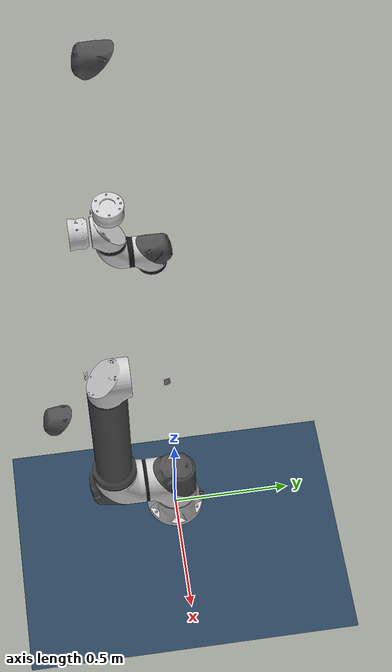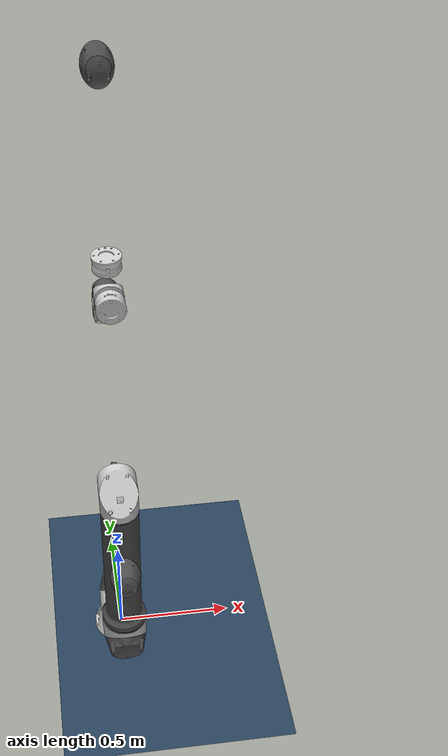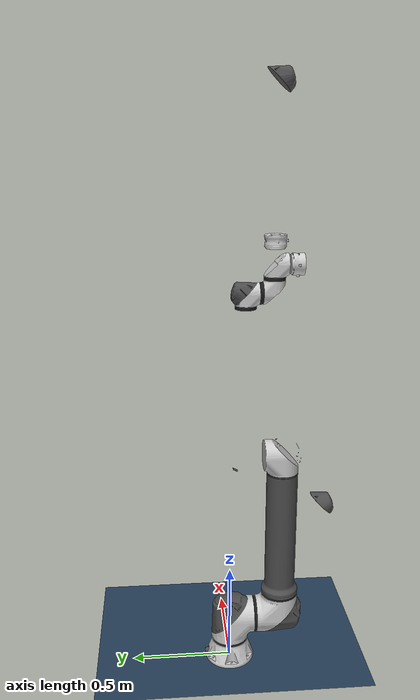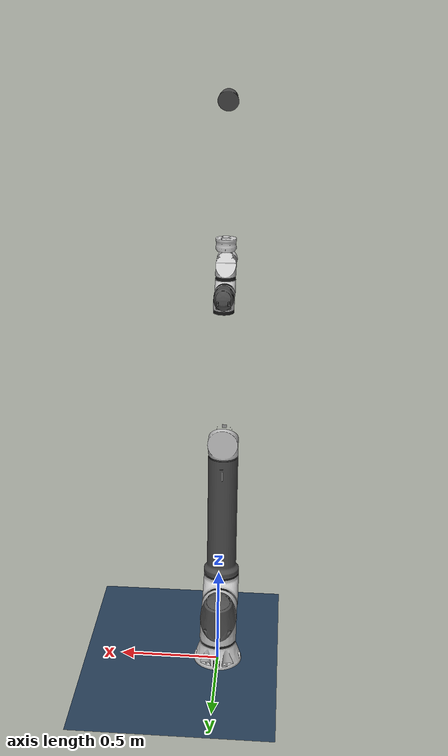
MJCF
<mujoco model="rb20_1800e_u">
  <compiler angle="radian" />
  <asset>
    <mesh name="link0" content_type="model/stl" file="../meshes/rb20_1800e_u/collision/link0.stl" />
    <mesh name="link1" content_type="model/stl" file="../meshes/rb20_1800e_u/collision/link1.stl" />
    <mesh name="link2" content_type="model/stl" file="../meshes/rb20_1800e_u/collision/link2.stl" />
    <mesh name="link3" content_type="model/stl" file="../meshes/rb20_1800e_u/collision/link3.stl" />
    <mesh name="link4" content_type="model/stl" file="../meshes/rb20_1800e_u/collision/link4.stl" />
    <mesh name="link5" content_type="model/stl" file="../meshes/rb20_1800e_u/collision/link5.stl" />
    <mesh name="link6" content_type="model/stl" file="../meshes/rb20_1800e_u/collision/link6.stl" />
    <texture type="skybox" builtin="gradient" rgb1="0.3 0.5 0.7" rgb2="0 0 0" width="512" height="3072" />
    <texture type="2d" name="groundplane" builtin="checker" mark="edge" rgb1="0.2 0.3 0.4" rgb2="0.1 0.2 0.3" markrgb="0.8 0.8 0.8" width="300" height="300" />
    <material name="groundplane" texture="groundplane" texuniform="true" texrepeat="5 5" reflectance="0.2" />
    <mesh name="link0_visual_0" file="../meshes/rb20_1800e_u/visual/link0_visual_0.obj" />
    <material name="link0_visual_0" rgba="0.3 0.3 0.3 1" specular="0" />
    <mesh name="link0_visual_1" file="../meshes/rb20_1800e_u/visual/link0_visual_1.obj" />
    <material name="link0_visual_1" rgba="0.3 0.3 0.3 1" specular="0" />
    <mesh name="link0_visual_2" file="../meshes/rb20_1800e_u/visual/link0_visual_2.obj" />
    <material name="link0_visual_2" rgba="0.8 0.8 0.8 1" specular="0" />
    <mesh name="link0_visual_3" file="../meshes/rb20_1800e_u/visual/link0_visual_3.obj" />
    <material name="link0_visual_3" rgba="0.8 0.8 0.8 1" specular="0" />
    <mesh name="link1_visual_0" file="../meshes/rb20_1800e_u/visual/link1_visual_0.obj" />
    <material name="link1_visual_0" rgba="0.1 0.1 0.1 1" specular="0" />
    <mesh name="link1_visual_1" file="../meshes/rb20_1800e_u/visual/link1_visual_1.obj" />
    <material name="link1_visual_1" rgba="0.3 0.3 0.3 1" specular="0" />
    <mesh name="link1_visual_2" file="../meshes/rb20_1800e_u/visual/link1_visual_2.obj" />
    <material name="link1_visual_2" rgba="0.8 0.8 0.8 1" specular="0" />
    <mesh name="link2_visual_0" file="../meshes/rb20_1800e_u/visual/link2_visual_0.obj" />
    <material name="link2_visual_0" rgba="0.1 0.1 0.1 1" specular="0" />
    <mesh name="link2_visual_1" file="../meshes/rb20_1800e_u/visual/link2_visual_1.obj" />
    <material name="link2_visual_1" rgba="0.8 0.8 0.8 1" specular="0" />
    <mesh name="link2_visual_2" file="../meshes/rb20_1800e_u/visual/link2_visual_2.obj" />
    <material name="link2_visual_2" rgba="0.3 0.3 0.3 1" specular="0" />
    <mesh name="link2_visual_3" file="../meshes/rb20_1800e_u/visual/link2_visual_3.obj" />
    <material name="link2_visual_3" rgba="0.3 0.3 0.3 1" specular="0" />
    <mesh name="link2_visual_4" file="../meshes/rb20_1800e_u/visual/link2_visual_4.obj" />
    <material name="link2_visual_4" rgba="0.3 0.3 0.3 1" specular="0" />
    <mesh name="link2_visual_5" file="../meshes/rb20_1800e_u/visual/link2_visual_5.obj" />
    <material name="link2_visual_5" rgba="0.3 0.3 0.3 1" specular="0" />
    <mesh name="link2_visual_6" file="../meshes/rb20_1800e_u/visual/link2_visual_6.obj" />
    <material name="link2_visual_6" rgba="0.1 0.1 0.1 1" specular="0" />
    <mesh name="link2_visual_7" file="../meshes/rb20_1800e_u/visual/link2_visual_7.obj" />
    <material name="link2_visual_7" rgba="0.3 0.3 0.3 1" specular="0" />
    <mesh name="link2_visual_8" file="../meshes/rb20_1800e_u/visual/link2_visual_8.obj" />
    <material name="link2_visual_8" rgba="0.8 0.8 0.8 1" specular="0" />
    <mesh name="link2_visual_9" file="../meshes/rb20_1800e_u/visual/link2_visual_9.obj" />
    <material name="link2_visual_9" rgba="0.8 0.8 0.8 1" specular="0" />
    <mesh name="link2_visual_10" file="../meshes/rb20_1800e_u/visual/link2_visual_10.obj" />
    <material name="link2_visual_10" rgba="0.3 0.3 0.3 1" specular="0" />
    <mesh name="link3_visual_0" file="../meshes/rb20_1800e_u/visual/link3_visual_0.obj" />
    <material name="link3_visual_0" rgba="0.1 0.1 0.1 1" specular="0" />
    <mesh name="link3_visual_1" file="../meshes/rb20_1800e_u/visual/link3_visual_1.obj" />
    <material name="link3_visual_1" rgba="0.3 0.3 0.3 1" specular="0" />
    <mesh name="link3_visual_2" file="../meshes/rb20_1800e_u/visual/link3_visual_2.obj" />
    <material name="link3_visual_2" rgba="0.8 0.8 0.8 1" specular="0" />
    <mesh name="link3_visual_3" file="../meshes/rb20_1800e_u/visual/link3_visual_3.obj" />
    <material name="link3_visual_3" rgba="0.3 0.3 0.3 1" specular="0" />
    <mesh name="link4_visual_0" file="../meshes/rb20_1800e_u/visual/link4_visual_0.obj" />
    <material name="link4_visual_0" rgba="0.1 0.1 0.1 1" specular="0" />
    <mesh name="link4_visual_1" file="../meshes/rb20_1800e_u/visual/link4_visual_1.obj" />
    <material name="link4_visual_1" rgba="0.3 0.3 0.3 1" specular="0" />
    <mesh name="link4_visual_2" file="../meshes/rb20_1800e_u/visual/link4_visual_2.obj" />
    <material name="link4_visual_2" rgba="0.8 0.8 0.8 1" specular="0" />
    <mesh name="link5_visual_0" file="../meshes/rb20_1800e_u/visual/link5_visual_0.obj" />
    <material name="link5_visual_0" rgba="0.1 0.1 0.1 1" specular="0" />
    <mesh name="link5_visual_1" file="../meshes/rb20_1800e_u/visual/link5_visual_1.obj" />
    <material name="link5_visual_1" rgba="0.3 0.3 0.3 1" specular="0" />
    <mesh name="link5_visual_2" file="../meshes/rb20_1800e_u/visual/link5_visual_2.obj" />
    <material name="link5_visual_2" rgba="0.8 0.8 0.8 1" specular="0" />
    <mesh name="link6_visual_0" file="../meshes/rb20_1800e_u/visual/link6_visual_0.obj" />
    <material name="link6_visual_0" rgba="0.8 0.8 0.8 1" specular="0" />
    <mesh name="link6_visual_1" file="../meshes/rb20_1800e_u/visual/link6_visual_1.obj" />
    <material name="link6_visual_1" rgba="0.8 0.8 0.8 1" specular="0" />
    <mesh name="link6_visual_2" file="../meshes/rb20_1800e_u/visual/link6_visual_2.obj" />
    <material name="link6_visual_2" rgba="0.8 0.8 0.8 1" specular="0" />
    <mesh name="link6_visual_3" file="../meshes/rb20_1800e_u/visual/link6_visual_3.obj" />
    <material name="link6_visual_3" rgba="0.8 0.8 0.8 1" specular="0" />
    <mesh name="link6_visual_4" file="../meshes/rb20_1800e_u/visual/link6_visual_4.obj" />
    <material name="link6_visual_4" rgba="0.8 0.8 0.8 1" specular="0" />
    <mesh name="link6_visual_5" file="../meshes/rb20_1800e_u/visual/link6_visual_5.obj" />
    <material name="link6_visual_5" rgba="0.8 0.8 0.8 1" specular="0" />
  </asset>
  <worldbody>
    <body name="link0" gravcomp="1">
      <geom type="mesh" mesh="link0" group="3" />
      <body name="link1" pos="0 0 0.241" gravcomp="1">
        <inertial pos="-4.2e-05 -0.009244 -0.056956" quat="0.700201 0.130015 -0.13001 0.689864" mass="16.468" diaginertia="0.0955238 0.094803 0.0704759" />
        <joint name="base" pos="0 0 0" axis="0 0 1" range="-6.28318530717959 6.28318530717959" />
        <geom type="mesh" mesh="link1" group="3" />
        <body name="link2" pos="0 -0.2545 0" gravcomp="1">
          <inertial pos="2.9e-05 0.038287 0.332417" quat="0.999924 0.012314 -1.85652e-05 0.00091101" mass="33.747" diaginertia="4.90949 4.87082 0.180776" />
          <joint name="shoulder" pos="0 0 0" axis="0 1 0" range="-6.28318530717959 6.28318530717959" />
          <geom type="mesh" mesh="link2" group="3" />
          <body name="link3" pos="0 0 0.885" gravcomp="1">
            <inertial pos="-2.2e-05 0.170556 0.3821" quat="0.999995 -0.001815 -4.47051e-05 0.00254915" mass="8.402" diaginertia="0.801801 0.800253 0.0182539" />
            <joint name="elbow" pos="0 0 0" axis="0 1 0" range="-2.87979326579064 2.87979326579064" />
            <geom type="mesh" mesh="link3" group="3" />
            <body name="link4" pos="0 0.1875 0.7858" gravcomp="1">
              <inertial pos="9.8e-05 -0.126711 0.032313" quat="0.984306 0.175005 -0.0119343 0.0192874" mass="1.924" diaginertia="0.00258808 0.00246029 0.00200225" />
              <joint name="wrist1" pos="0 0 0" axis="0 1 0" range="-6.28318530717959 6.28318530717959" />
              <geom type="mesh" mesh="link4" group="3" />
              <body name="link5" pos="0 -0.1292 0" gravcomp="1">
                <inertial pos="-9.8e-05 -0.032313 0.126711" quat="0.819757 0.572262 -0.00519944 0.022077" mass="1.924" diaginertia="0.00258808 0.00246029 0.00200225" />
                <joint name="wrist2" pos="0 0 0" axis="0 0 1" range="-6.28318530717959 6.28318530717959" />
                <geom type="mesh" mesh="link5" group="3" />
                <body name="link6" pos="0 0 0.1292" gravcomp="1">
                  <inertial pos="0.000164 -0.099056 -8e-06" quat="0.402502 0.580979 0.585109 0.397623" mass="0.677" diaginertia="0.00116085 0.000874134 0.000871213" />
                  <joint name="wrist3" pos="0 0 0" axis="0 1 0" range="-6.28318530717959 6.28318530717959" />
                  <geom type="mesh" mesh="link6" group="3" />
                  <body name="tcp" pos="0 -0.13 0" gravcomp="1" />
                  <geom type="mesh" mesh="link6_visual_0" material="link6_visual_0" group="2" contype="0" conaffinity="0" density="0" />
                  <geom type="mesh" mesh="link6_visual_1" material="link6_visual_1" group="2" contype="0" conaffinity="0" density="0" />
                  <geom type="mesh" mesh="link6_visual_2" material="link6_visual_2" group="2" contype="0" conaffinity="0" density="0" />
                  <geom type="mesh" mesh="link6_visual_3" material="link6_visual_3" group="2" contype="0" conaffinity="0" density="0" />
                  <geom type="mesh" mesh="link6_visual_4" material="link6_visual_4" group="2" contype="0" conaffinity="0" density="0" />
                  <geom type="mesh" mesh="link6_visual_5" material="link6_visual_5" group="2" contype="0" conaffinity="0" density="0" />
                </body>
                <geom type="mesh" mesh="link5_visual_0" material="link5_visual_0" group="2" contype="0" conaffinity="0" density="0" />
                <geom type="mesh" mesh="link5_visual_1" material="link5_visual_1" group="2" contype="0" conaffinity="0" density="0" />
                <geom type="mesh" mesh="link5_visual_2" material="link5_visual_2" group="2" contype="0" conaffinity="0" density="0" />
              </body>
              <geom type="mesh" mesh="link4_visual_0" material="link4_visual_0" group="2" contype="0" conaffinity="0" density="0" />
              <geom type="mesh" mesh="link4_visual_1" material="link4_visual_1" group="2" contype="0" conaffinity="0" density="0" />
              <geom type="mesh" mesh="link4_visual_2" material="link4_visual_2" group="2" contype="0" conaffinity="0" density="0" />
            </body>
            <geom type="mesh" mesh="link3_visual_0" material="link3_visual_0" group="2" contype="0" conaffinity="0" density="0" />
            <geom type="mesh" mesh="link3_visual_1" material="link3_visual_1" group="2" contype="0" conaffinity="0" density="0" />
            <geom type="mesh" mesh="link3_visual_2" material="link3_visual_2" group="2" contype="0" conaffinity="0" density="0" />
            <geom type="mesh" mesh="link3_visual_3" material="link3_visual_3" group="2" contype="0" conaffinity="0" density="0" />
          </body>
          <geom type="mesh" mesh="link2_visual_0" material="link2_visual_0" group="2" contype="0" conaffinity="0" density="0" />
          <geom type="mesh" mesh="link2_visual_1" material="link2_visual_1" group="2" contype="0" conaffinity="0" density="0" />
          <geom type="mesh" mesh="link2_visual_2" material="link2_visual_2" group="2" contype="0" conaffinity="0" density="0" />
          <geom type="mesh" mesh="link2_visual_3" material="link2_visual_3" group="2" contype="0" conaffinity="0" density="0" />
          <geom type="mesh" mesh="link2_visual_4" material="link2_visual_4" group="2" contype="0" conaffinity="0" density="0" />
          <geom type="mesh" mesh="link2_visual_5" material="link2_visual_5" group="2" contype="0" conaffinity="0" density="0" />
          <geom type="mesh" mesh="link2_visual_6" material="link2_visual_6" group="2" contype="0" conaffinity="0" density="0" />
          <geom type="mesh" mesh="link2_visual_7" material="link2_visual_7" group="2" contype="0" conaffinity="0" density="0" />
          <geom type="mesh" mesh="link2_visual_8" material="link2_visual_8" group="2" contype="0" conaffinity="0" density="0" />
          <geom type="mesh" mesh="link2_visual_9" material="link2_visual_9" group="2" contype="0" conaffinity="0" density="0" />
          <geom type="mesh" mesh="link2_visual_10" material="link2_visual_10" group="2" contype="0" conaffinity="0" density="0" />
        </body>
        <geom type="mesh" mesh="link1_visual_0" material="link1_visual_0" group="2" contype="0" conaffinity="0" density="0" />
        <geom type="mesh" mesh="link1_visual_1" material="link1_visual_1" group="2" contype="0" conaffinity="0" density="0" />
        <geom type="mesh" mesh="link1_visual_2" material="link1_visual_2" group="2" contype="0" conaffinity="0" density="0" />
      </body>
      <geom type="mesh" mesh="link0_visual_0" material="link0_visual_0" group="2" contype="0" conaffinity="0" density="0" />
      <geom type="mesh" mesh="link0_visual_1" material="link0_visual_1" group="2" contype="0" conaffinity="0" density="0" />
      <geom type="mesh" mesh="link0_visual_2" material="link0_visual_2" group="2" contype="0" conaffinity="0" density="0" />
      <geom type="mesh" mesh="link0_visual_3" material="link0_visual_3" group="2" contype="0" conaffinity="0" density="0" />
    </body>
    <light pos="0 0 4" dir="0 0 -1" directional="true" />
    <geom name="floor" type="plane" size="0 0 0.05" material="groundplane" />
  </worldbody>
  <option timestep="0.0005" integrator="implicitfast" />
  <visual>
    <headlight diffuse="0.6 0.6 0.6" ambient="0.3 0.3 0.3" specular="0 0 0" />
    <rgba haze="0.15 0.25 0.35 1" />
    <global azimuth="140" elevation="-20" />
  </visual>
  <contact>
    <exclude body1="link0" body2="link1" />
  </contact>
  <statistic center="0 -0.11899045 1.047274" extent="2.1655472" />
  <actuator>
    <position name="base" joint="base" kp="2000" dampratio="2" ctrlrange="-6.28318530717959 6.28318530717959" />
    <position name="shoulder" joint="shoulder" kp="2000" dampratio="2" ctrlrange="-6.28318530717959 6.28318530717959" />
    <position name="elbow" joint="elbow" kp="2000" dampratio="2" ctrlrange="-2.87979326579064 2.87979326579064" />
    <position name="wrist1" joint="wrist1" kp="2000" dampratio="2" ctrlrange="-6.28318530717959 6.28318530717959" />
    <position name="wrist2" joint="wrist2" kp="2000" dampratio="2" ctrlrange="-6.28318530717959 6.28318530717959" />
    <position name="wrist3" joint="wrist3" kp="2000" dampratio="2" ctrlrange="-6.28318530717959 6.28318530717959" />
  </actuator>
</mujoco>
